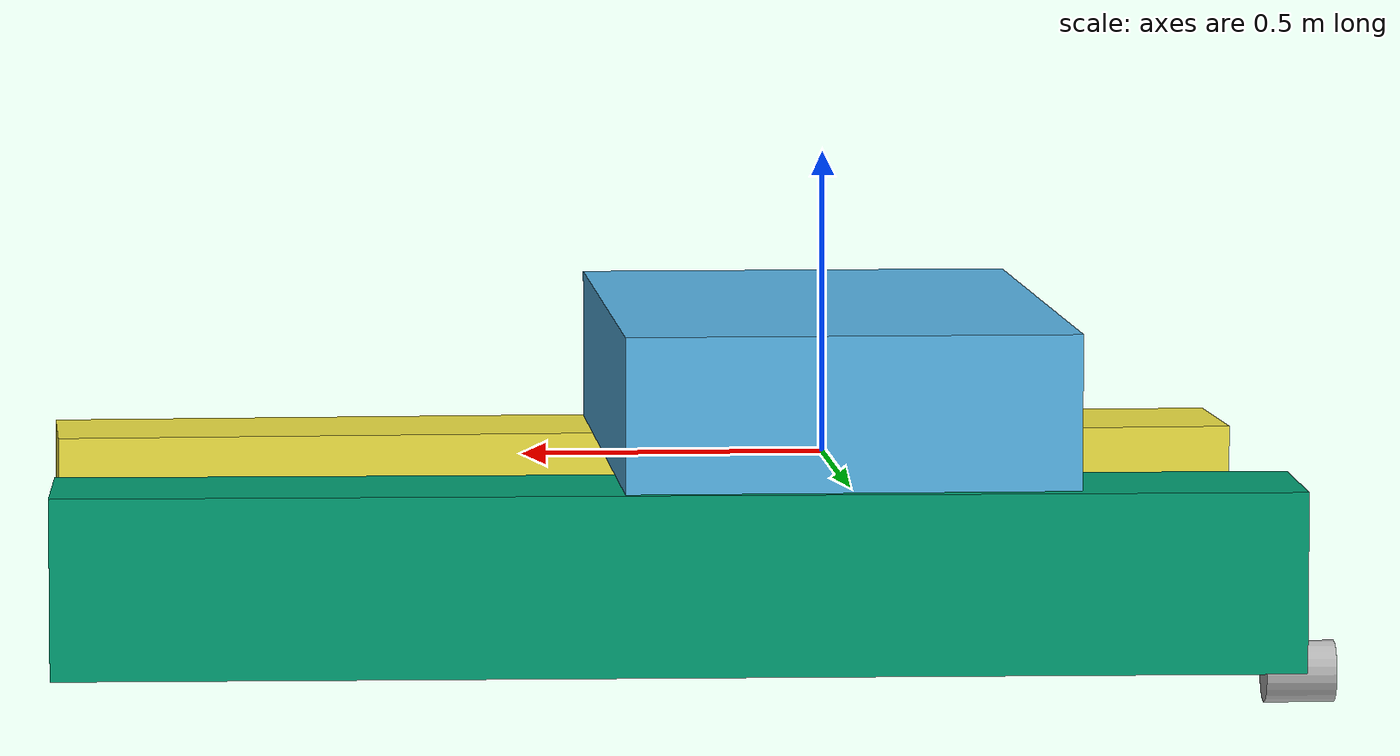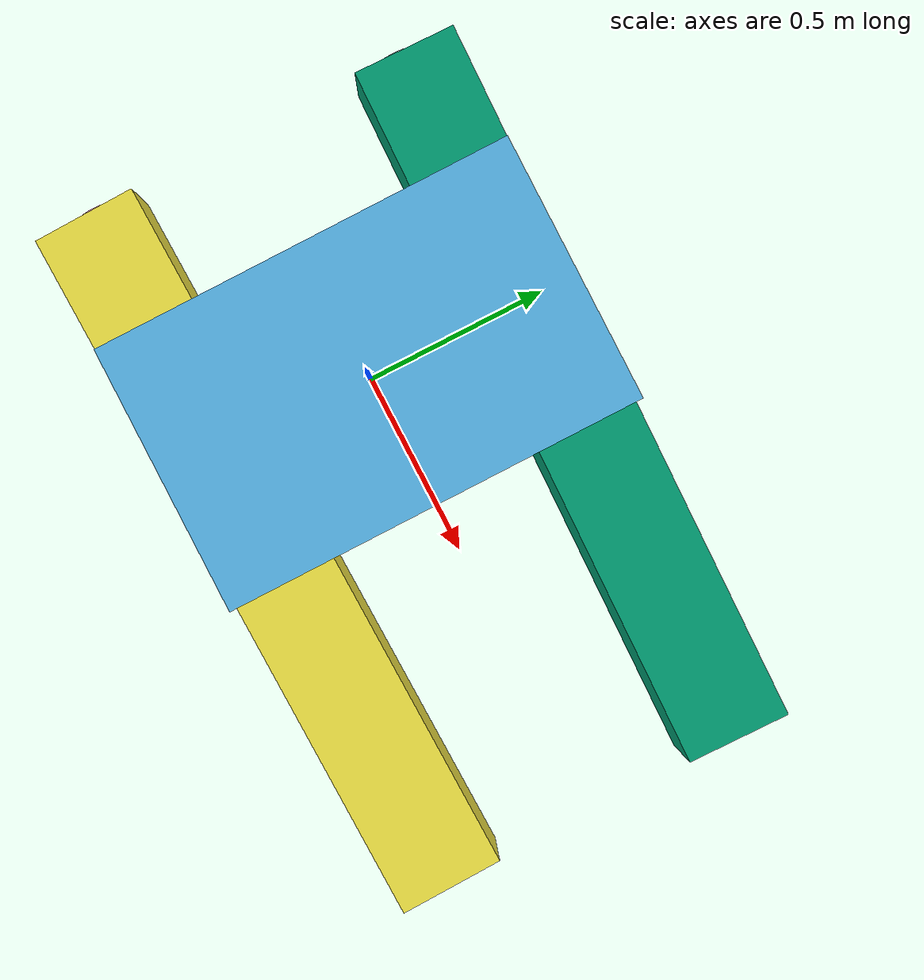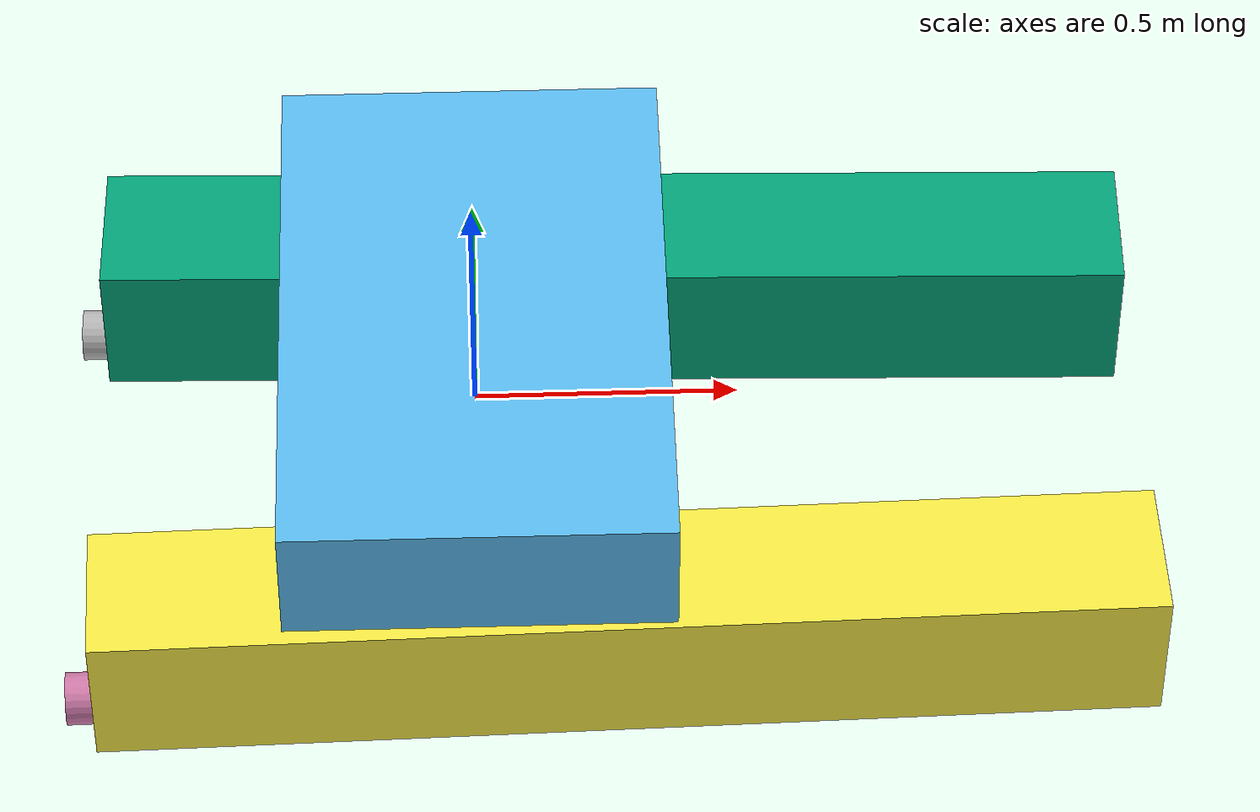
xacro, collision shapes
<?xml version="1.0"?>
<robot xmlns:xacro="http://www.ros.org/wiki/xacro" name="aidboat">

<link name="dummy">
</link>

<link name="base_link">
	<inertial>
		<mass value="9.7"/>
		<inertia ixx="0.3268889088" ixy="0" ixz="0" iyy="0.1452968093" iyz="0" izz="0.1452968093"/>
	</inertial>

	<collision>
		<origin xyz="0 0 0.1255" rpy="0 0 0"/>
		<geometry>
			<box size="0.73 1.15 0.251"/>
		</geometry>
	</collision>

	<visual>
		<origin rpy="0 0 0" xyz="0 0 0"/>
		<geometry>
			<mesh filename="package://aidboat_description/meshes/Base.dae"/>
		</geometry>
	</visual>
</link>

<joint name="dummy_joint" type="fixed">
	<parent link="dummy"/>
	<child link="base_link"/>
</joint>

<xacro:macro name="hulljoint" params="prefix reflect">
<joint name="base_to_${prefix}" type="fixed">
	<parent link="base_link" />
	<child link="${prefix}_link" />
	<origin xyz="0.172098 ${reflect*(0.447)} 0" rpy="0 0 0" />
</joint>
</xacro:macro>

<xacro:hulljoint prefix="hull1" reflect="1" />
<xacro:hulljoint prefix="hull2" reflect="-1" />

<xacro:macro name="hull" params="prefix reflect">
<link name="${prefix}_link">
	<inertial>
		<mass value="19.4"/>
		<inertia ixx="0.07803639653" ixy="0" ixz="0" iyy="2.168007709" iyz="0" izz="2.168007709" />
	</inertial>

	<collision>
		<origin xyz="0.1019 0 -0.146" rpy="0 0 ${reflect*(0.0244346)}" />
		<geometry>
			<box size="2.002 0.286 0.292" />
		</geometry>
	</collision>

	<visual>
		<origin rpy="0 0 ${reflect*(0.0244346)}" xyz="0 0 0" />
		<geometry>
			<mesh filename="package://aidboat_description/meshes/Hull.dae" />
		</geometry>
	</visual>
</link>
</xacro:macro>

<xacro:hull prefix="hull1" reflect="-1" />
<xacro:hull prefix="hull2" reflect="1" />

<xacro:macro name="Engine" params="prefix reflect">
<link name="${prefix}Engine">
	<inertial>
		<mass value="0.126" />
		<inertia ixx="0.00002900992" ixy="0" ixz="0" iyy="0.00002900992" iyz="0" izz="0.0001575" />
	</inertial>

	<collision>
		<origin xyz="0.011 0 0" rpy="0 1.5708 ${reflect*(0.0244346)}" />
		<geometry>
			<cylinder length="0.113" radius="0.05"/>
		</geometry>
	</collision>

	<visual>
		<origin rpy="0 0 ${reflect*(0.0244346)}" xyz="0 0 0" />
		<geometry>
			<mesh filename="package://aidboat_description/meshes/${prefix}Engine.dae" />
		</geometry>
	</visual>
</link>
</xacro:macro>

<xacro:macro name="Propeller" params="prefix reflect">
<link name="${prefix}Propeller">
	<inertial>
		<mass value="0.030" />
		<inertia ixx="0.00000058378" ixy="0" ixz="0" iyy="0.00000058378" iyz="0" izz="0.00002177415" />
	</inertial>

	<collision>
		<origin xyz="0.011 0 0" rpy="0 1.5708 ${reflect*(0.0244346)}" />
		<geometry>
			<cylinder length="0.03" radius="0.0381"/>
		</geometry>
	</collision>

	<visual>
		<origin rpy="0 0 ${reflect*(0.0244346)}" xyz="0 0 0" />
		<geometry>
			<mesh filename="package://aidboat_description/meshes/${prefix}Propeller.dae" />
		</geometry>
	</visual>
</link>
</xacro:macro>

<xacro:Propeller prefix="CCW" reflect="1" />
<xacro:Propeller prefix="CW" reflect="-1" />

<xacro:Engine prefix="CCW" reflect="1" />
<xacro:Engine prefix="CW" reflect="-1" />

<xacro:macro name="b2Ejoint" params="prefix reflect">
<joint name="base_to_${prefix}Engine" type="fixed">
	<parent link="base_link" />
	<child link="${prefix}Engine" />
	<origin xyz="-0.741 ${reflect*(0.47)} -0.308" rpy="0 0 0" />
</joint>
</xacro:macro>

<xacro:b2Ejoint prefix="CCW" reflect="-1" />
<xacro:b2Ejoint prefix="CW" reflect="1" />

<xacro:macro name="E2Pjoint" params="prefix">
<joint name="${prefix}Engine_to_Propeller" type="continuous">
	<parent link="${prefix}Engine" />
	<child link="${prefix}Propeller" />
	<origin xyz="0 0 0" rpy="0 0 0" />
	<axis rpy="0 0 0" xyz="1 0 0" />
	<limit effort="100" velocity="100" />
	<dynamics friction="0.05" damping="0.05" />
</joint>
</xacro:macro>

<xacro:E2Pjoint prefix="CCW" />
<xacro:E2Pjoint prefix="CW" />

</robot>
